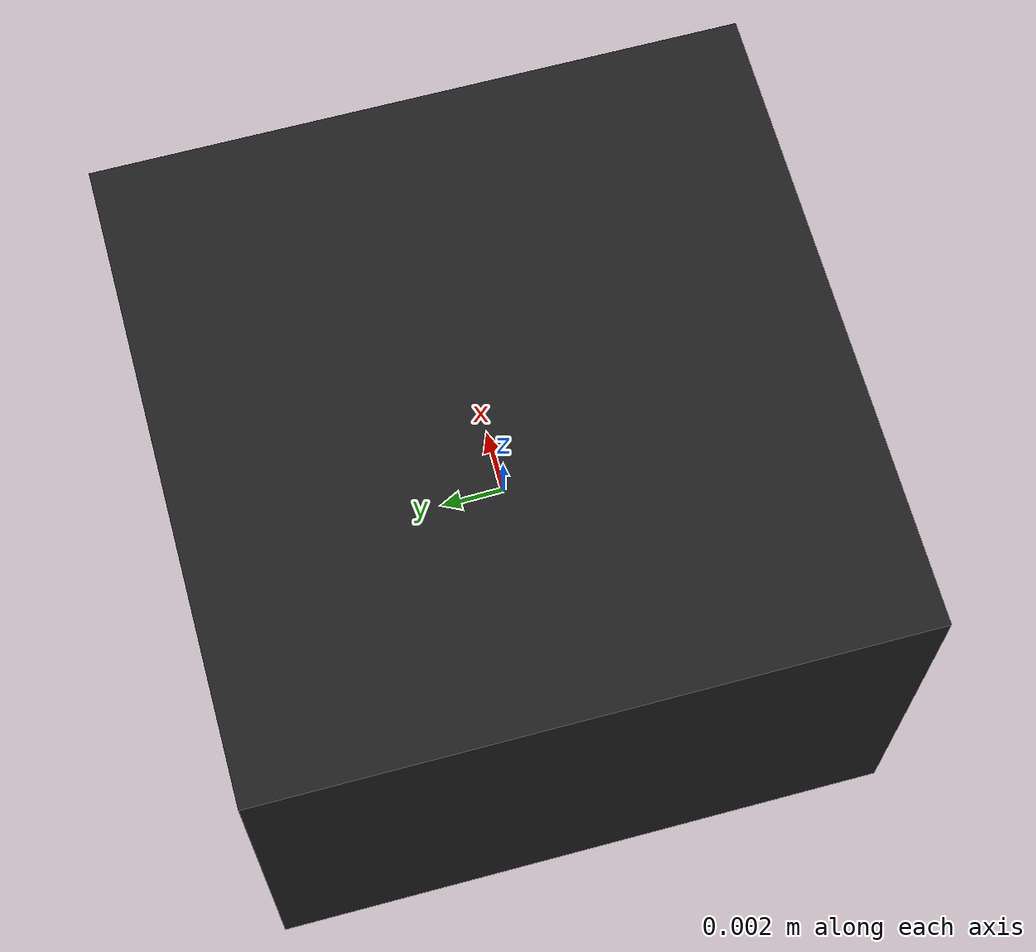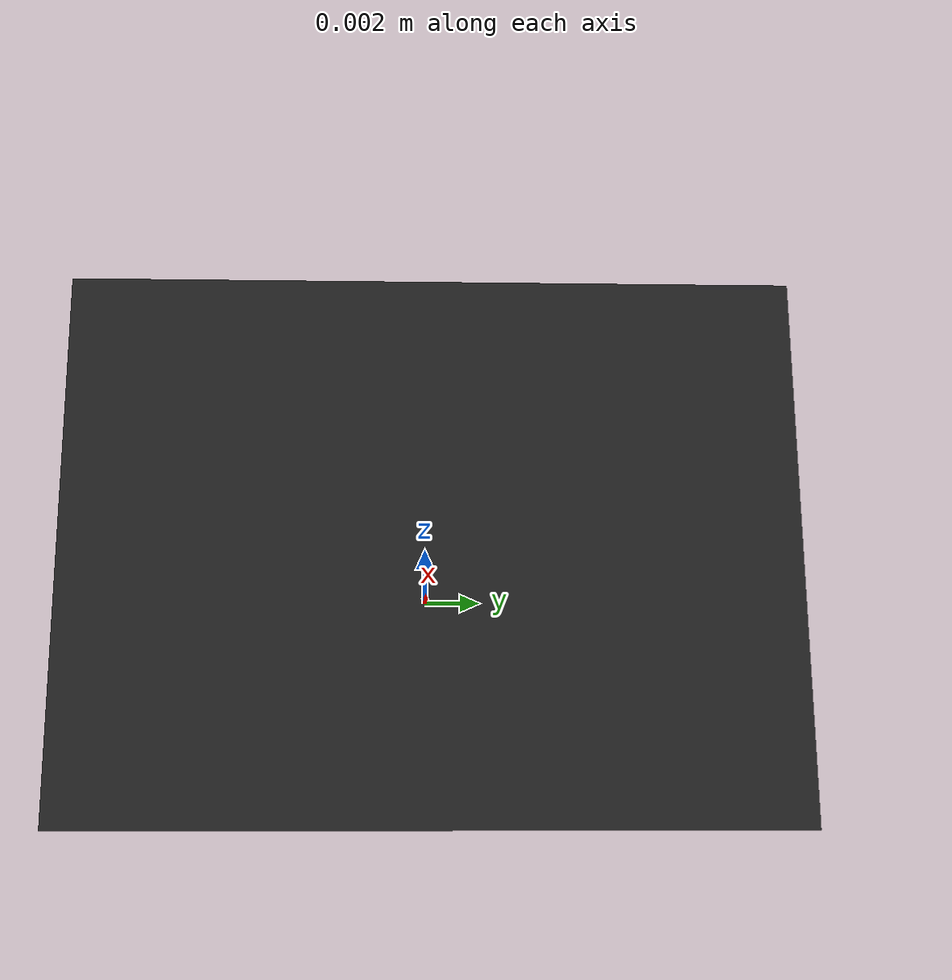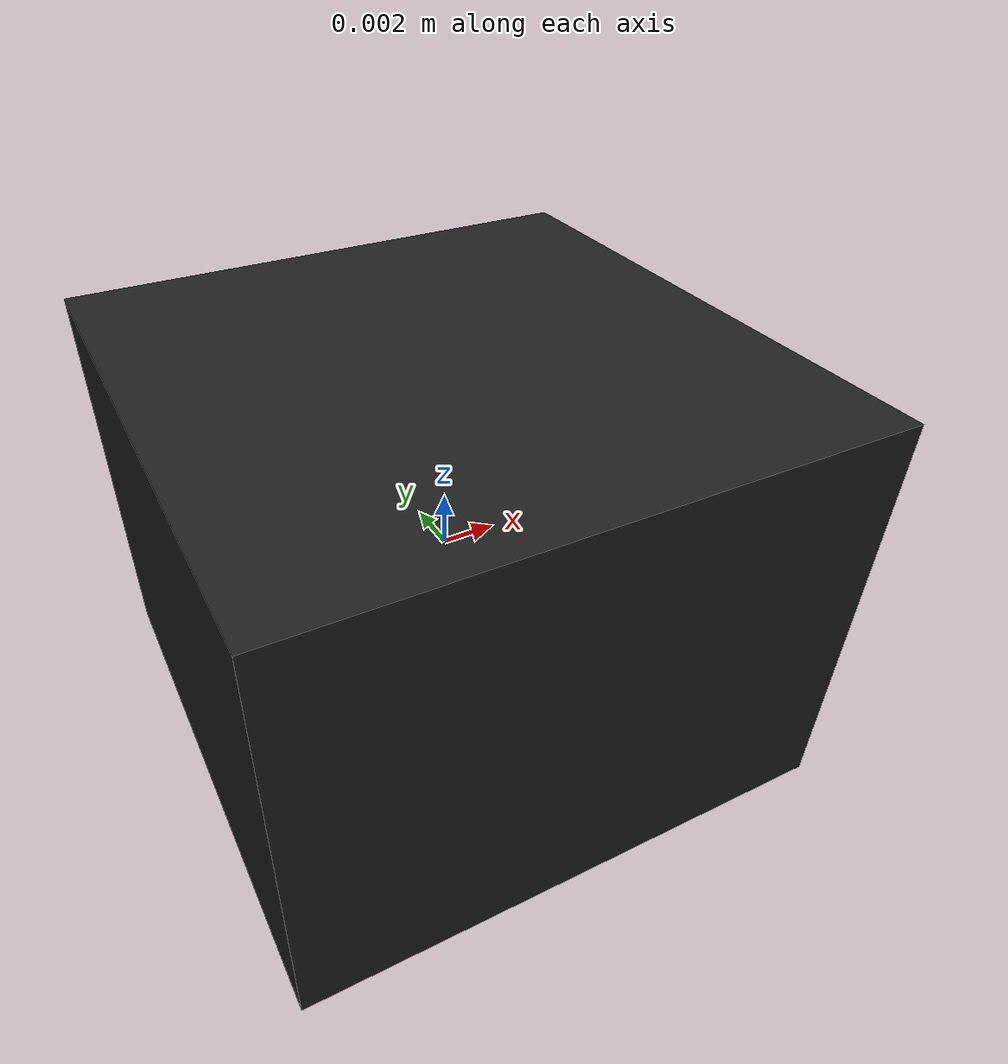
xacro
<?xml version="1.0"?>
<robot xmlns:xacro="http://www.ros.org/wiki/xacro" name="imu">

    <xacro:macro name="imu" params="prefix:=imu">
        <!-- Create laser reference frame -->
        <link name="${prefix}_link">
            <inertial>
                <mass value="0.001" />
                <origin xyz="0 0 0" />
                <inertia ixx="0.001" ixy="0.0" ixz="0.0"
                         iyy="0.001" iyz="0.0"
                         izz="0.001" />
            </inertial>

            <visual>
                <origin xyz=" 0 0 0 " rpy="0 0 0" />
                <geometry>
                    <box size="0.02 0.02 0.015" />
                </geometry>
                <material name="tire_mat"/>
            </visual>

            <collision>
                <origin xyz="0.0 0.0 0.0" rpy="0 0 0" />
                <geometry>
                    <box size="0.04 0.04 0.03" />
                </geometry>
            </collision>
        </link>
        <gazebo reference="${prefix}_link">
            <material>Gazebo/Black</material>
        </gazebo>

        <gazebo reference="${prefix}_link">
            <gravity>true</gravity>
            <sensor name="imu_sensor" type="imu">
                <always_on>true</always_on>
                <update_rate>100</update_rate>
                <visualize>true</visualize>
                <topic>/imu_data</topic>
                <plugin filename="libgazebo_ros_imu_sensor.so" name="imu_plugin">
                    <topicName>imu_data</topicName>
                    <bodyName>imu_link</bodyName>
                    <updateRateHZ>100.0</updateRateHZ>
                    <gaussianNoise>0.0</gaussianNoise>
                    <xyzOffset>0 0 0</xyzOffset>
                    <rpyOffset>0 0 0</rpyOffset>
                    <frameName>imu_link</frameName>
                </plugin>
                <pose>0 0 0 0 0 0</pose>
            </sensor>
        </gazebo>

    </xacro:macro>
    <xacro:imu prefix="imu"/>

</robot>
